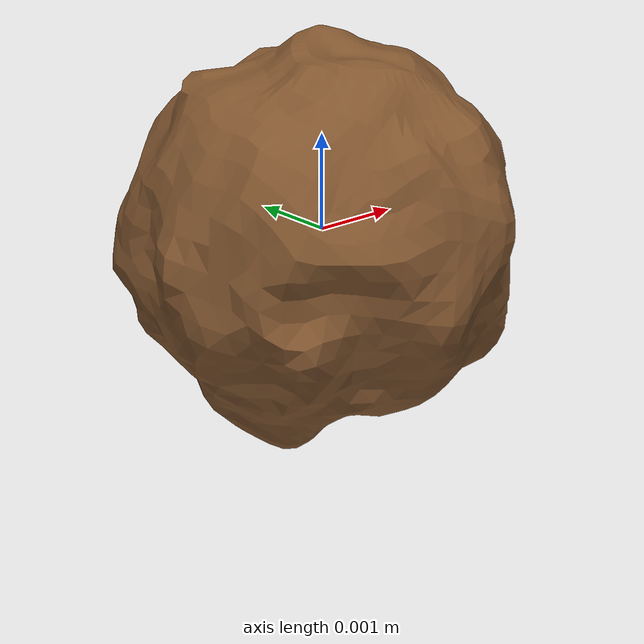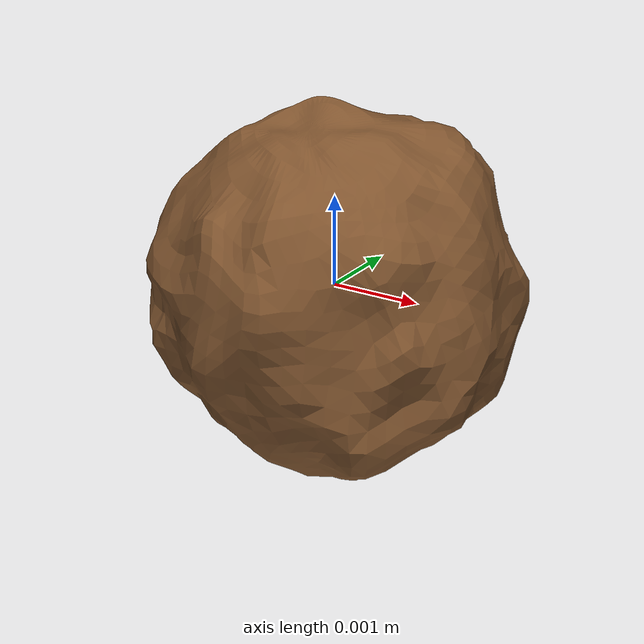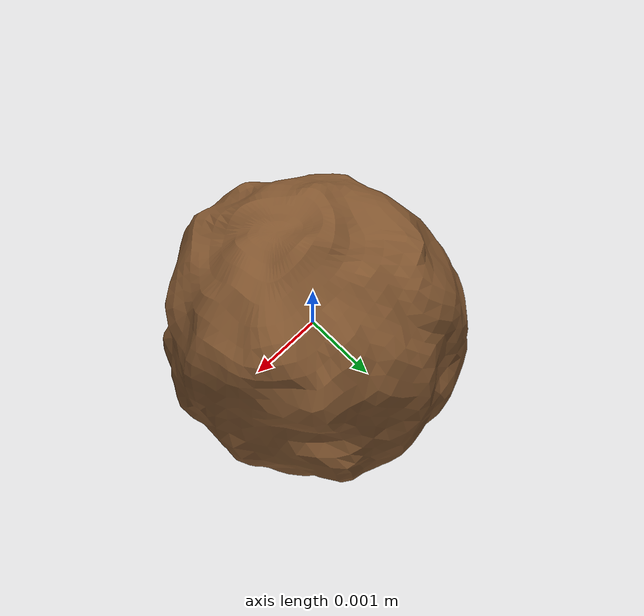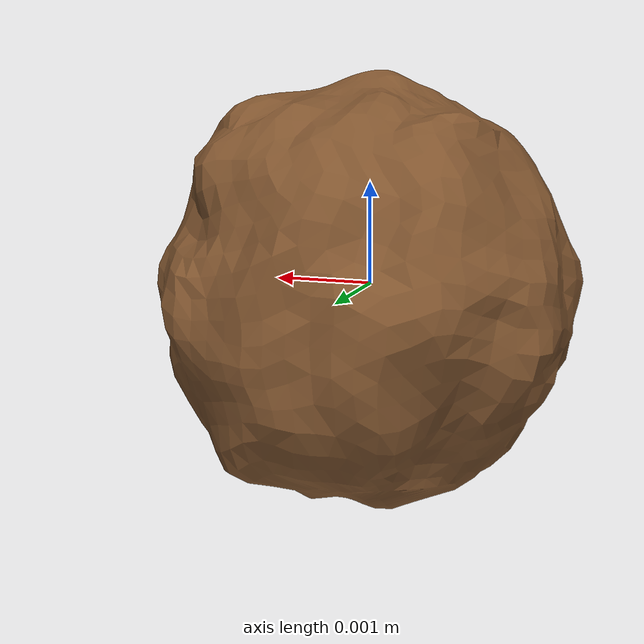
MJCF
<?xml version="1.0" ?>
<mujoco model="pepper_brown">
	<compiler meshdir="pepper_brown/meshes" texturedir="pepper_brown/textures" angle="radian" autolimits="true" balanceinertia="true" boundmass="0.000001" boundinertia="0.000001"/>
	<default>
		<default class="visual">
			<geom contype="0" conaffinity="0"/>
		</default>
		<default class="collision">
			<geom rgba="1.0 0.0 0.0 0.0"/>
		</default>
	</default>
	<asset>
		<mesh name="PepperBrown" file="obj/PepperBrown.obj" scale="1.0 1.0 1.0"/>
		<mesh name="PepperBrown_001" file="stl/PepperBrown_001.stl" scale="1.0 1.0 1.0"/>
		<mesh name="PepperBrown_002" file="stl/PepperBrown_002.stl" scale="1.0 1.0 1.0"/>
		<mesh name="PepperBrown_003" file="stl/PepperBrown_003.stl" scale="1.0 1.0 1.0"/>
		<mesh name="PepperBrown_004" file="stl/PepperBrown_004.stl" scale="1.0 1.0 1.0"/>
		<mesh name="PepperBrown_005" file="stl/PepperBrown_005.stl" scale="1.0 1.0 1.0"/>
		<mesh name="PepperBrown_006" file="stl/PepperBrown_006.stl" scale="1.0 1.0 1.0"/>
		<mesh name="PepperBrown_007" file="stl/PepperBrown_007.stl" scale="1.0 1.0 1.0"/>
		<mesh name="PepperBrown_008" file="stl/PepperBrown_008.stl" scale="1.0 1.0 1.0"/>
		<mesh name="PepperBrown_009" file="stl/PepperBrown_009.stl" scale="1.0 1.0 1.0"/>
		<mesh name="PepperBrown_010" file="stl/PepperBrown_010.stl" scale="1.0 1.0 1.0"/>
		<mesh name="PepperBrown_011" file="stl/PepperBrown_011.stl" scale="1.0 1.0 1.0"/>
		<mesh name="PepperBrown_012" file="stl/PepperBrown_012.stl" scale="1.0 1.0 1.0"/>
		<material name="M_PepperBrown" texture="T_PepperBrown"/>
		<texture name="T_PepperBrown" type="2d" file="T_PepperBrown.png"/>
	</asset>
	<worldbody>
		<body name="pepper_brown" pos="0.0 0.0 0.0" quat="1.0 0.0 0.0 0.0">
			<inertial mass="1.883025652205106e-05" pos="2.0011988453916274e-05 3.485151319182478e-05 -5.9768586652353406e-05" quat="-0.36709529161453247 -0.6220515370368958 0.6530370712280273 -0.22767412662506104" diaginertia="2.9328914297188646e-11 3.026827052887704e-11 3.056271555279544e-11"/>
			<geom name="PepperBrown" type="mesh" pos="0.0 0.0 0.0" quat="1.0 0.0 0.0 0.0" mesh="PepperBrown" material="M_PepperBrown" class="visual"/>
			<geom name="PepperBrown_001" type="mesh" pos="0.0 0.0 0.0" quat="1.0 0.0 0.0 0.0" mesh="PepperBrown_001" class="collision"/>
			<geom name="PepperBrown_002" type="mesh" pos="0.0 0.0 0.0" quat="1.0 0.0 0.0 0.0" mesh="PepperBrown_002" class="collision"/>
			<geom name="PepperBrown_003" type="mesh" pos="0.0 0.0 0.0" quat="1.0 0.0 0.0 0.0" mesh="PepperBrown_003" class="collision"/>
			<geom name="PepperBrown_004" type="mesh" pos="0.0 0.0 0.0" quat="1.0 0.0 0.0 0.0" mesh="PepperBrown_004" class="collision"/>
			<geom name="PepperBrown_005" type="mesh" pos="0.0 0.0 0.0" quat="1.0 0.0 0.0 0.0" mesh="PepperBrown_005" class="collision"/>
			<geom name="PepperBrown_006" type="mesh" pos="0.0 0.0 0.0" quat="1.0 0.0 0.0 0.0" mesh="PepperBrown_006" class="collision"/>
			<geom name="PepperBrown_007" type="mesh" pos="0.0 0.0 0.0" quat="1.0 0.0 0.0 0.0" mesh="PepperBrown_007" class="collision"/>
			<geom name="PepperBrown_008" type="mesh" pos="0.0 0.0 0.0" quat="1.0 0.0 0.0 0.0" mesh="PepperBrown_008" class="collision"/>
			<geom name="PepperBrown_009" type="mesh" pos="0.0 0.0 0.0" quat="1.0 0.0 0.0 0.0" mesh="PepperBrown_009" class="collision"/>
			<geom name="PepperBrown_010" type="mesh" pos="0.0 0.0 0.0" quat="1.0 0.0 0.0 0.0" mesh="PepperBrown_010" class="collision"/>
			<geom name="PepperBrown_011" type="mesh" pos="0.0 0.0 0.0" quat="1.0 0.0 0.0 0.0" mesh="PepperBrown_011" class="collision"/>
			<geom name="PepperBrown_012" type="mesh" pos="0.0 0.0 0.0" quat="1.0 0.0 0.0 0.0" mesh="PepperBrown_012" class="collision"/>
		</body>
	</worldbody>
	<equality/>
</mujoco>
